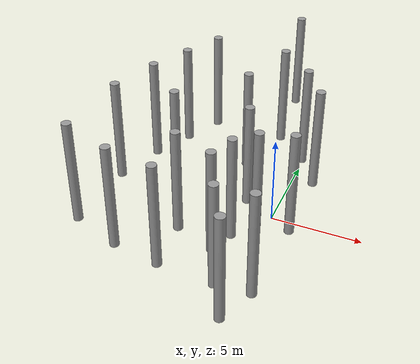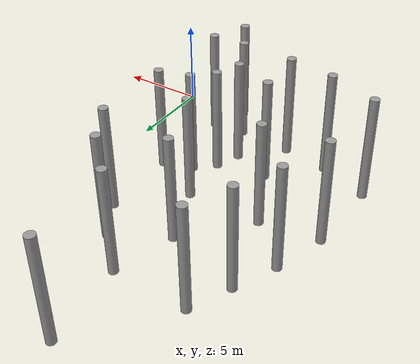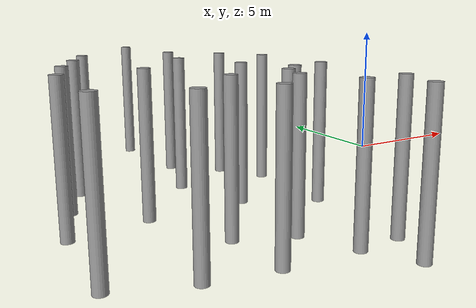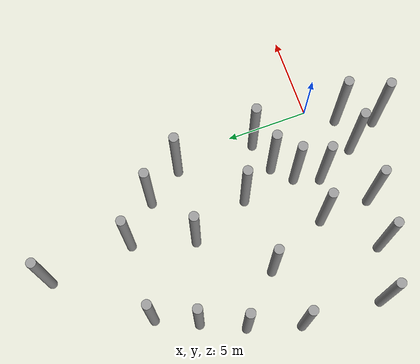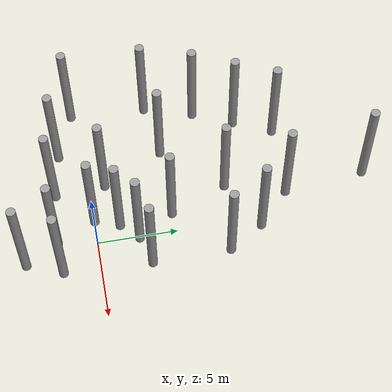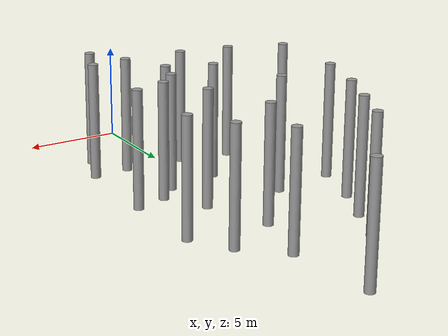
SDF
<sdf version="1.6">
 <model name="skog2">
  <link name="link_0">
   <inertial>
    <mass>1</mass>
    <inertia><ixx>0.145833</ixx><ixy>0</ixy><ixz>0</ixz><iyy>0.145833</iyy><iyz>0</iyz><izz>0.125</izz></inertia>
   </inertial>
   <pose>-3.56509 -0.045146 0 0 -0 0</pose>
   <visual name="visual">
    <geometry><cylinder><radius>0.3</radius><length>7</length></cylinder></geometry>
    <material>
     <lighting>1</lighting>
     <script><uri>file://media/materials/scripts/gazebo.material</uri><name>Gazebo/Grey</name></script>
     <shader type="vertex"><normal_map>__default__</normal_map></shader>
     <ambient>0.3 0.3 0.3 1</ambient>
     <diffuse>0.7 0.7 0.7 1</diffuse>
     <specular>0.01 0.01 0.01 1</specular>
     <emissive>0 0 0 1</emissive>
    </material>
   </visual>
   <collision name="collision">
    <geometry><cylinder><radius>0.3</radius><length>7</length></cylinder></geometry>
    <surface>
     <friction>
      <ode><mu>1</mu><mu2>1</mu2><fdir1>0 0 0</fdir1><slip1>0</slip1><slip2>0</slip2></ode>
      <torsional>
       <coefficient>1</coefficient>
       <patch_radius>0</patch_radius>
       <surface_radius>0</surface_radius>
       <use_patch_radius>1</use_patch_radius>
       <ode><slip>0</slip></ode>
      </torsional>
     </friction>
     <bounce><restitution_coefficient>0</restitution_coefficient><threshold>1e+06</threshold></bounce>
     <contact>
      <collide_without_contact>0</collide_without_contact>
      <collide_without_contact_bitmask>1</collide_without_contact_bitmask>
      <collide_bitmask>1</collide_bitmask>
      <ode>
       <soft_cfm>0</soft_cfm>
       <soft_erp>0.2</soft_erp>
       <kp>1e+13</kp>
       <kd>1</kd>
       <max_vel>0.01</max_vel>
       <min_depth>0</min_depth>
      </ode>
      <bullet>
       <split_impulse>1</split_impulse>
       <split_impulse_penetration_threshold>-0.01</split_impulse_penetration_threshold>
       <soft_cfm>0</soft_cfm>
       <soft_erp>0.2</soft_erp>
       <kp>1e+13</kp>
       <kd>1</kd>
      </bullet>
     </contact>
    </surface>
   </collision>
  </link>
  <link name="link_0_clone">
   <inertial>
    <mass>1</mass>
    <inertia><ixx>0.145833</ixx><ixy>0</ixy><ixz>0</ixz><iyy>0.145833</iyy><iyz>0</iyz><izz>0.125</izz></inertia>
   </inertial>
   <pose>-2.97752 1.58068 0 0 -0 0</pose>
   <visual name="visual">
    <geometry><cylinder><radius>0.3</radius><length>7</length></cylinder></geometry>
    <material>
     <lighting>1</lighting>
     <script><uri>file://media/materials/scripts/gazebo.material</uri><name>Gazebo/Grey</name></script>
     <shader type="vertex"><normal_map>__default__</normal_map></shader>
     <ambient>0.3 0.3 0.3 1</ambient>
     <diffuse>0.7 0.7 0.7 1</diffuse>
     <specular>0.01 0.01 0.01 1</specular>
     <emissive>0 0 0 1</emissive>
    </material>
   </visual>
   <collision name="collision">
    <geometry><cylinder><radius>0.3</radius><length>7</length></cylinder></geometry>
    <surface>
     <friction>
      <ode><mu>1</mu><mu2>1</mu2><fdir1>0 0 0</fdir1><slip1>0</slip1><slip2>0</slip2></ode>
      <torsional>
       <coefficient>1</coefficient>
       <patch_radius>0</patch_radius>
       <surface_radius>0</surface_radius>
       <use_patch_radius>1</use_patch_radius>
       <ode><slip>0</slip></ode>
      </torsional>
     </friction>
     <bounce><restitution_coefficient>0</restitution_coefficient><threshold>1e+06</threshold></bounce>
     <contact>
      <collide_without_contact>0</collide_without_contact>
      <collide_without_contact_bitmask>1</collide_without_contact_bitmask>
      <collide_bitmask>1</collide_bitmask>
      <ode>
       <soft_cfm>0</soft_cfm>
       <soft_erp>0.2</soft_erp>
       <kp>1e+13</kp>
       <kd>1</kd>
       <max_vel>0.01</max_vel>
       <min_depth>0</min_depth>
      </ode>
      <bullet>
       <split_impulse>1</split_impulse>
       <split_impulse_penetration_threshold>-0.01</split_impulse_penetration_threshold>
       <soft_cfm>0</soft_cfm>
       <soft_erp>0.2</soft_erp>
       <kp>1e+13</kp>
       <kd>1</kd>
      </bullet>
     </contact>
    </surface>
   </collision>
  </link>
  <link name="link_0_clone_0">
   <inertial>
    <mass>1</mass>
    <inertia><ixx>0.145833</ixx><ixy>0</ixy><ixz>0</ixz><iyy>0.145833</iyy><iyz>0</iyz><izz>0.125</izz></inertia>
   </inertial>
   <pose>-1.8151 2.73071 0 0 -0 0</pose>
   <visual name="visual">
    <geometry><cylinder><radius>0.3</radius><length>7</length></cylinder></geometry>
    <material>
     <lighting>1</lighting>
     <script><uri>file://media/materials/scripts/gazebo.material</uri><name>Gazebo/Grey</name></script>
     <shader type="vertex"><normal_map>__default__</normal_map></shader>
     <ambient>0.3 0.3 0.3 1</ambient>
     <diffuse>0.7 0.7 0.7 1</diffuse>
     <specular>0.01 0.01 0.01 1</specular>
     <emissive>0 0 0 1</emissive>
    </material>
   </visual>
   <collision name="collision">
    <geometry><cylinder><radius>0.3</radius><length>7</length></cylinder></geometry>
    <surface>
     <friction>
      <ode><mu>1</mu><mu2>1</mu2><fdir1>0 0 0</fdir1><slip1>0</slip1><slip2>0</slip2></ode>
      <torsional>
       <coefficient>1</coefficient>
       <patch_radius>0</patch_radius>
       <surface_radius>0</surface_radius>
       <use_patch_radius>1</use_patch_radius>
       <ode><slip>0</slip></ode>
      </torsional>
     </friction>
     <bounce><restitution_coefficient>0</restitution_coefficient><threshold>1e+06</threshold></bounce>
     <contact>
      <collide_without_contact>0</collide_without_contact>
      <collide_without_contact_bitmask>1</collide_without_contact_bitmask>
      <collide_bitmask>1</collide_bitmask>
      <ode>
       <soft_cfm>0</soft_cfm>
       <soft_erp>0.2</soft_erp>
       <kp>1e+13</kp>
       <kd>1</kd>
       <max_vel>0.01</max_vel>
       <min_depth>0</min_depth>
      </ode>
      <bullet>
       <split_impulse>1</split_impulse>
       <split_impulse_penetration_threshold>-0.01</split_impulse_penetration_threshold>
       <soft_cfm>0</soft_cfm>
       <soft_erp>0.2</soft_erp>
       <kp>1e+13</kp>
       <kd>1</kd>
      </bullet>
     </contact>
    </surface>
   </collision>
  </link>
  <link name="link_0_clone_12">
   <inertial>
    <mass>1</mass>
    <inertia><ixx>0.145833</ixx><ixy>0</ixy><ixz>0</ixz><iyy>0.145833</iyy><iyz>0</iyz><izz>0.125</izz></inertia>
   </inertial>
   <pose>-1.05106 -4.80766 0 0 -0 0</pose>
   <visual name="visual">
    <geometry><cylinder><radius>0.3</radius><length>7</length></cylinder></geometry>
    <material>
     <lighting>1</lighting>
     <script><uri>file://media/materials/scripts/gazebo.material</uri><name>Gazebo/Grey</name></script>
     <shader type="vertex"><normal_map>__default__</normal_map></shader>
     <ambient>0.3 0.3 0.3 1</ambient>
     <diffuse>0.7 0.7 0.7 1</diffuse>
     <specular>0.01 0.01 0.01 1</specular>
     <emissive>0 0 0 1</emissive>
    </material>
   </visual>
   <collision name="collision">
    <geometry><cylinder><radius>0.3</radius><length>7</length></cylinder></geometry>
    <surface>
     <friction>
      <ode><mu>1</mu><mu2>1</mu2><fdir1>0 0 0</fdir1><slip1>0</slip1><slip2>0</slip2></ode>
      <torsional>
       <coefficient>1</coefficient>
       <patch_radius>0</patch_radius>
       <surface_radius>0</surface_radius>
       <use_patch_radius>1</use_patch_radius>
       <ode><slip>0</slip></ode>
      </torsional>
     </friction>
     <bounce><restitution_coefficient>0</restitution_coefficient><threshold>1e+06</threshold></bounce>
     <contact>
      <collide_without_contact>0</collide_without_contact>
      <collide_without_contact_bitmask>1</collide_without_contact_bitmask>
      <collide_bitmask>1</collide_bitmask>
      <ode>
       <soft_cfm>0</soft_cfm>
       <soft_erp>0.2</soft_erp>
       <kp>1e+13</kp>
       <kd>1</kd>
       <max_vel>0.01</max_vel>
       <min_depth>0</min_depth>
      </ode>
      <bullet>
       <split_impulse>1</split_impulse>
       <split_impulse_penetration_threshold>-0.01</split_impulse_penetration_threshold>
       <soft_cfm>0</soft_cfm>
       <soft_erp>0.2</soft_erp>
       <kp>1e+13</kp>
       <kd>1</kd>
      </bullet>
     </contact>
    </surface>
   </collision>
  </link>
  <link name="link_0_clone_18">
   <inertial>
    <mass>1</mass>
    <inertia><ixx>0.145833</ixx><ixy>0</ixy><ixz>0</ixz><iyy>0.145833</iyy><iyz>0</iyz><izz>0.125</izz></inertia>
   </inertial>
   <pose>0.071763 8.4831 0 0 -0 0</pose>
   <visual name="visual">
    <geometry><cylinder><radius>0.3</radius><length>7</length></cylinder></geometry>
    <material>
     <lighting>1</lighting>
     <script><uri>file://media/materials/scripts/gazebo.material</uri><name>Gazebo/Grey</name></script>
     <shader type="vertex"><normal_map>__default__</normal_map></shader>
     <ambient>0.3 0.3 0.3 1</ambient>
     <diffuse>0.7 0.7 0.7 1</diffuse>
     <specular>0.01 0.01 0.01 1</specular>
     <emissive>0 0 0 1</emissive>
    </material>
   </visual>
   <collision name="collision">
    <geometry><cylinder><radius>0.3</radius><length>7</length></cylinder></geometry>
    <surface>
     <friction>
      <ode><mu>1</mu><mu2>1</mu2><fdir1>0 0 0</fdir1><slip1>0</slip1><slip2>0</slip2></ode>
      <torsional>
       <coefficient>1</coefficient>
       <patch_radius>0</patch_radius>
       <surface_radius>0</surface_radius>
       <use_patch_radius>1</use_patch_radius>
       <ode><slip>0</slip></ode>
      </torsional>
     </friction>
     <bounce><restitution_coefficient>0</restitution_coefficient><threshold>1e+06</threshold></bounce>
     <contact>
      <collide_without_contact>0</collide_without_contact>
      <collide_without_contact_bitmask>1</collide_without_contact_bitmask>
      <collide_bitmask>1</collide_bitmask>
      <ode>
       <soft_cfm>0</soft_cfm>
       <soft_erp>0.2</soft_erp>
       <kp>1e+13</kp>
       <kd>1</kd>
       <max_vel>0.01</max_vel>
       <min_depth>0</min_depth>
      </ode>
      <bullet>
       <split_impulse>1</split_impulse>
       <split_impulse_penetration_threshold>-0.01</split_impulse_penetration_threshold>
       <soft_cfm>0</soft_cfm>
       <soft_erp>0.2</soft_erp>
       <kp>1e+13</kp>
       <kd>1</kd>
      </bullet>
     </contact>
    </surface>
   </collision>
  </link>
  <link name="link_0_clone_19">
   <inertial>
    <mass>1</mass>
    <inertia><ixx>0.145833</ixx><ixy>0</ixy><ixz>0</ixz><iyy>0.145833</iyy><iyz>0</iyz><izz>0.125</izz></inertia>
   </inertial>
   <pose>-4.78843 8.93534 0 0 -0 0</pose>
   <visual name="visual">
    <geometry><cylinder><radius>0.3</radius><length>7</length></cylinder></geometry>
    <material>
     <lighting>1</lighting>
     <script><uri>file://media/materials/scripts/gazebo.material</uri><name>Gazebo/Grey</name></script>
     <shader type="vertex"><normal_map>__default__</normal_map></shader>
     <ambient>0.3 0.3 0.3 1</ambient>
     <diffuse>0.7 0.7 0.7 1</diffuse>
     <specular>0.01 0.01 0.01 1</specular>
     <emissive>0 0 0 1</emissive>
    </material>
   </visual>
   <collision name="collision">
    <geometry><cylinder><radius>0.3</radius><length>7</length></cylinder></geometry>
    <surface>
     <friction>
      <ode><mu>1</mu><mu2>1</mu2><fdir1>0 0 0</fdir1><slip1>0</slip1><slip2>0</slip2></ode>
      <torsional>
       <coefficient>1</coefficient>
       <patch_radius>0</patch_radius>
       <surface_radius>0</surface_radius>
       <use_patch_radius>1</use_patch_radius>
       <ode><slip>0</slip></ode>
      </torsional>
     </friction>
     <bounce><restitution_coefficient>0</restitution_coefficient><threshold>1e+06</threshold></bounce>
     <contact>
      <collide_without_contact>0</collide_without_contact>
      <collide_without_contact_bitmask>1</collide_without_contact_bitmask>
      <collide_bitmask>1</collide_bitmask>
      <ode>
       <soft_cfm>0</soft_cfm>
       <soft_erp>0.2</soft_erp>
       <kp>1e+13</kp>
       <kd>1</kd>
       <max_vel>0.01</max_vel>
       <min_depth>0</min_depth>
      </ode>
      <bullet>
       <split_impulse>1</split_impulse>
       <split_impulse_penetration_threshold>-0.01</split_impulse_penetration_threshold>
       <soft_cfm>0</soft_cfm>
       <soft_erp>0.2</soft_erp>
       <kp>1e+13</kp>
       <kd>1</kd>
      </bullet>
     </contact>
    </surface>
   </collision>
  </link>
  <link name="link_0_clone_20">
   <inertial>
    <mass>1</mass>
    <inertia><ixx>0.145833</ixx><ixy>0</ixy><ixz>0</ixz><iyy>0.145833</iyy><iyz>0</iyz><izz>0.125</izz></inertia>
   </inertial>
   <pose>-8.199 5.0595 0 0 -0 0</pose>
   <visual name="visual">
    <geometry><cylinder><radius>0.3</radius><length>7</length></cylinder></geometry>
    <material>
     <lighting>1</lighting>
     <script><uri>file://media/materials/scripts/gazebo.material</uri><name>Gazebo/Grey</name></script>
     <shader type="vertex"><normal_map>__default__</normal_map></shader>
     <ambient>0.3 0.3 0.3 1</ambient>
     <diffuse>0.7 0.7 0.7 1</diffuse>
     <specular>0.01 0.01 0.01 1</specular>
     <emissive>0 0 0 1</emissive>
    </material>
   </visual>
   <collision name="collision">
    <geometry><cylinder><radius>0.3</radius><length>7</length></cylinder></geometry>
    <surface>
     <friction>
      <ode><mu>1</mu><mu2>1</mu2><fdir1>0 0 0</fdir1><slip1>0</slip1><slip2>0</slip2></ode>
      <torsional>
       <coefficient>1</coefficient>
       <patch_radius>0</patch_radius>
       <surface_radius>0</surface_radius>
       <use_patch_radius>1</use_patch_radius>
       <ode><slip>0</slip></ode>
      </torsional>
     </friction>
     <bounce><restitution_coefficient>0</restitution_coefficient><threshold>1e+06</threshold></bounce>
     <contact>
      <collide_without_contact>0</collide_without_contact>
      <collide_without_contact_bitmask>1</collide_without_contact_bitmask>
      <collide_bitmask>1</collide_bitmask>
      <ode>
       <soft_cfm>0</soft_cfm>
       <soft_erp>0.2</soft_erp>
       <kp>1e+13</kp>
       <kd>1</kd>
       <max_vel>0.01</max_vel>
       <min_depth>0</min_depth>
      </ode>
      <bullet>
       <split_impulse>1</split_impulse>
       <split_impulse_penetration_threshold>-0.01</split_impulse_penetration_threshold>
       <soft_cfm>0</soft_cfm>
       <soft_erp>0.2</soft_erp>
       <kp>1e+13</kp>
       <kd>1</kd>
      </bullet>
     </contact>
    </surface>
   </collision>
  </link>
  <link name="link_0_clone_21">
   <inertial>
    <mass>1</mass>
    <inertia><ixx>0.145833</ixx><ixy>0</ixy><ixz>0</ixz><iyy>0.145833</iyy><iyz>0</iyz><izz>0.125</izz></inertia>
   </inertial>
   <pose>-9.02508 -1.87411 0 0 -0 0</pose>
   <visual name="visual">
    <geometry><cylinder><radius>0.3</radius><length>7</length></cylinder></geometry>
    <material>
     <lighting>1</lighting>
     <script><uri>file://media/materials/scripts/gazebo.material</uri><name>Gazebo/Grey</name></script>
     <shader type="vertex"><normal_map>__default__</normal_map></shader>
     <ambient>0.3 0.3 0.3 1</ambient>
     <diffuse>0.7 0.7 0.7 1</diffuse>
     <specular>0.01 0.01 0.01 1</specular>
     <emissive>0 0 0 1</emissive>
    </material>
   </visual>
   <collision name="collision">
    <geometry><cylinder><radius>0.3</radius><length>7</length></cylinder></geometry>
    <surface>
     <friction>
      <ode><mu>1</mu><mu2>1</mu2><fdir1>0 0 0</fdir1><slip1>0</slip1><slip2>0</slip2></ode>
      <torsional>
       <coefficient>1</coefficient>
       <patch_radius>0</patch_radius>
       <surface_radius>0</surface_radius>
       <use_patch_radius>1</use_patch_radius>
       <ode><slip>0</slip></ode>
      </torsional>
     </friction>
     <bounce><restitution_coefficient>0</restitution_coefficient><threshold>1e+06</threshold></bounce>
     <contact>
      <collide_without_contact>0</collide_without_contact>
      <collide_without_contact_bitmask>1</collide_without_contact_bitmask>
      <collide_bitmask>1</collide_bitmask>
      <ode>
       <soft_cfm>0</soft_cfm>
       <soft_erp>0.2</soft_erp>
       <kp>1e+13</kp>
       <kd>1</kd>
       <max_vel>0.01</max_vel>
       <min_depth>0</min_depth>
      </ode>
      <bullet>
       <split_impulse>1</split_impulse>
       <split_impulse_penetration_threshold>-0.01</split_impulse_penetration_threshold>
       <soft_cfm>0</soft_cfm>
       <soft_erp>0.2</soft_erp>
       <kp>1e+13</kp>
       <kd>1</kd>
      </bullet>
     </contact>
    </surface>
   </collision>
  </link>
  <link name="link_0_clone_3">
   <inertial>
    <mass>1</mass>
    <inertia><ixx>0.145833</ixx><ixy>0</ixy><ixz>0</ixz><iyy>0.145833</iyy><iyz>0</iyz><izz>0.125</izz></inertia>
   </inertial>
   <pose>0.132438 3.29787 0 0 -0 0</pose>
   <visual name="visual">
    <geometry><cylinder><radius>0.3</radius><length>7</length></cylinder></geometry>
    <material>
     <lighting>1</lighting>
     <script><uri>file://media/materials/scripts/gazebo.material</uri><name>Gazebo/Grey</name></script>
     <shader type="vertex"><normal_map>__default__</normal_map></shader>
     <ambient>0.3 0.3 0.3 1</ambient>
     <diffuse>0.7 0.7 0.7 1</diffuse>
     <specular>0.01 0.01 0.01 1</specular>
     <emissive>0 0 0 1</emissive>
    </material>
   </visual>
   <collision name="collision">
    <geometry><cylinder><radius>0.3</radius><length>7</length></cylinder></geometry>
    <surface>
     <friction>
      <ode><mu>1</mu><mu2>1</mu2><fdir1>0 0 0</fdir1><slip1>0</slip1><slip2>0</slip2></ode>
      <torsional>
       <coefficient>1</coefficient>
       <patch_radius>0</patch_radius>
       <surface_radius>0</surface_radius>
       <use_patch_radius>1</use_patch_radius>
       <ode><slip>0</slip></ode>
      </torsional>
     </friction>
     <bounce><restitution_coefficient>0</restitution_coefficient><threshold>1e+06</threshold></bounce>
     <contact>
      <collide_without_contact>0</collide_without_contact>
      <collide_without_contact_bitmask>1</collide_without_contact_bitmask>
      <collide_bitmask>1</collide_bitmask>
      <ode>
       <soft_cfm>0</soft_cfm>
       <soft_erp>0.2</soft_erp>
       <kp>1e+13</kp>
       <kd>1</kd>
       <max_vel>0.01</max_vel>
       <min_depth>0</min_depth>
      </ode>
      <bullet>
       <split_impulse>1</split_impulse>
       <split_impulse_penetration_threshold>-0.01</split_impulse_penetration_threshold>
       <soft_cfm>0</soft_cfm>
       <soft_erp>0.2</soft_erp>
       <kp>1e+13</kp>
       <kd>1</kd>
      </bullet>
     </contact>
    </surface>
   </collision>
  </link>
  <link name="link_0_clone_38">
   <inertial>
    <mass>1</mass>
    <inertia><ixx>0.145833</ixx><ixy>0</ixy><ixz>0</ixz><iyy>0.145833</iyy><iyz>0</iyz><izz>0.125</izz></inertia>
   </inertial>
   <pose>-3.63595 12.9178 0 0 -0 0</pose>
   <visual name="visual">
    <geometry><cylinder><radius>0.3</radius><length>7</length></cylinder></geometry>
    <material>
     <lighting>1</lighting>
     <script><uri>file://media/materials/scripts/gazebo.material</uri><name>Gazebo/Grey</name></script>
     <shader type="vertex"><normal_map>__default__</normal_map></shader>
     <ambient>0.3 0.3 0.3 1</ambient>
     <diffuse>0.7 0.7 0.7 1</diffuse>
     <specular>0.01 0.01 0.01 1</specular>
     <emissive>0 0 0 1</emissive>
    </material>
   </visual>
   <collision name="collision">
    <geometry><cylinder><radius>0.3</radius><length>7</length></cylinder></geometry>
    <surface>
     <friction>
      <ode><mu>1</mu><mu2>1</mu2><fdir1>0 0 0</fdir1><slip1>0</slip1><slip2>0</slip2></ode>
      <torsional>
       <coefficient>1</coefficient>
       <patch_radius>0</patch_radius>
       <surface_radius>0</surface_radius>
       <use_patch_radius>1</use_patch_radius>
       <ode><slip>0</slip></ode>
      </torsional>
     </friction>
     <bounce><restitution_coefficient>0</restitution_coefficient><threshold>1e+06</threshold></bounce>
     <contact>
      <collide_without_contact>0</collide_without_contact>
      <collide_without_contact_bitmask>1</collide_without_contact_bitmask>
      <collide_bitmask>1</collide_bitmask>
      <ode>
       <soft_cfm>0</soft_cfm>
       <soft_erp>0.2</soft_erp>
       <kp>1e+13</kp>
       <kd>1</kd>
       <max_vel>0.01</max_vel>
       <min_depth>0</min_depth>
      </ode>
      <bullet>
       <split_impulse>1</split_impulse>
       <split_impulse_penetration_threshold>-0.01</split_impulse_penetration_threshold>
       <soft_cfm>0</soft_cfm>
       <soft_erp>0.2</soft_erp>
       <kp>1e+13</kp>
       <kd>1</kd>
      </bullet>
     </contact>
    </surface>
   </collision>
  </link>
  <link name="link_0_clone_39">
   <inertial>
    <mass>1</mass>
    <inertia><ixx>0.145833</ixx><ixy>0</ixy><ixz>0</ixz><iyy>0.145833</iyy><iyz>0</iyz><izz>0.125</izz></inertia>
   </inertial>
   <pose>-8.62884 13.0511 0 0 -0 0</pose>
   <visual name="visual">
    <geometry><cylinder><radius>0.3</radius><length>7</length></cylinder></geometry>
    <material>
     <lighting>1</lighting>
     <script><uri>file://media/materials/scripts/gazebo.material</uri><name>Gazebo/Grey</name></script>
     <shader type="vertex"><normal_map>__default__</normal_map></shader>
     <ambient>0.3 0.3 0.3 1</ambient>
     <diffuse>0.7 0.7 0.7 1</diffuse>
     <specular>0.01 0.01 0.01 1</specular>
     <emissive>0 0 0 1</emissive>
    </material>
   </visual>
   <collision name="collision">
    <geometry><cylinder><radius>0.3</radius><length>7</length></cylinder></geometry>
    <surface>
     <friction>
      <ode><mu>1</mu><mu2>1</mu2><fdir1>0 0 0</fdir1><slip1>0</slip1><slip2>0</slip2></ode>
      <torsional>
       <coefficient>1</coefficient>
       <patch_radius>0</patch_radius>
       <surface_radius>0</surface_radius>
       <use_patch_radius>1</use_patch_radius>
       <ode><slip>0</slip></ode>
      </torsional>
     </friction>
     <bounce><restitution_coefficient>0</restitution_coefficient><threshold>1e+06</threshold></bounce>
     <contact>
      <collide_without_contact>0</collide_without_contact>
      <collide_without_contact_bitmask>1</collide_without_contact_bitmask>
      <collide_bitmask>1</collide_bitmask>
      <ode>
       <soft_cfm>0</soft_cfm>
       <soft_erp>0.2</soft_erp>
       <kp>1e+13</kp>
       <kd>1</kd>
       <max_vel>0.01</max_vel>
       <min_depth>0</min_depth>
      </ode>
      <bullet>
       <split_impulse>1</split_impulse>
       <split_impulse_penetration_threshold>-0.01</split_impulse_penetration_threshold>
       <soft_cfm>0</soft_cfm>
       <soft_erp>0.2</soft_erp>
       <kp>1e+13</kp>
       <kd>1</kd>
      </bullet>
     </contact>
    </surface>
   </collision>
  </link>
  <link name="link_0_clone_4">
   <inertial>
    <mass>1</mass>
    <inertia><ixx>0.145833</ixx><ixy>0</ixy><ixz>0</ixz><iyy>0.145833</iyy><iyz>0</iyz><izz>0.125</izz></inertia>
   </inertial>
   <pose>-2.31778 -2.62714 0 0 -0 0</pose>
   <visual name="visual">
    <geometry><cylinder><radius>0.3</radius><length>7</length></cylinder></geometry>
    <material>
     <lighting>1</lighting>
     <script><uri>file://media/materials/scripts/gazebo.material</uri><name>Gazebo/Grey</name></script>
     <shader type="vertex"><normal_map>__default__</normal_map></shader>
     <ambient>0.3 0.3 0.3 1</ambient>
     <diffuse>0.7 0.7 0.7 1</diffuse>
     <specular>0.01 0.01 0.01 1</specular>
     <emissive>0 0 0 1</emissive>
    </material>
   </visual>
   <collision name="collision">
    <geometry><cylinder><radius>0.3</radius><length>7</length></cylinder></geometry>
    <surface>
     <friction>
      <ode><mu>1</mu><mu2>1</mu2><fdir1>0 0 0</fdir1><slip1>0</slip1><slip2>0</slip2></ode>
      <torsional>
       <coefficient>1</coefficient>
       <patch_radius>0</patch_radius>
       <surface_radius>0</surface_radius>
       <use_patch_radius>1</use_patch_radius>
       <ode><slip>0</slip></ode>
      </torsional>
     </friction>
     <bounce><restitution_coefficient>0</restitution_coefficient><threshold>1e+06</threshold></bounce>
     <contact>
      <collide_without_contact>0</collide_without_contact>
      <collide_without_contact_bitmask>1</collide_without_contact_bitmask>
      <collide_bitmask>1</collide_bitmask>
      <ode>
       <soft_cfm>0</soft_cfm>
       <soft_erp>0.2</soft_erp>
       <kp>1e+13</kp>
       <kd>1</kd>
       <max_vel>0.01</max_vel>
       <min_depth>0</min_depth>
      </ode>
      <bullet>
       <split_impulse>1</split_impulse>
       <split_impulse_penetration_threshold>-0.01</split_impulse_penetration_threshold>
       <soft_cfm>0</soft_cfm>
       <soft_erp>0.2</soft_erp>
       <kp>1e+13</kp>
       <kd>1</kd>
      </bullet>
     </contact>
    </surface>
   </collision>
  </link>
  <link name="link_0_clone_40">
   <inertial>
    <mass>1</mass>
    <inertia><ixx>0.145833</ixx><ixy>0</ixy><ixz>0</ixz><iyy>0.145833</iyy><iyz>0</iyz><izz>0.125</izz></inertia>
   </inertial>
   <pose>-9.79916 10.4817 0 0 -0 0</pose>
   <visual name="visual">
    <geometry><cylinder><radius>0.3</radius><length>7</length></cylinder></geometry>
    <material>
     <lighting>1</lighting>
     <script><uri>file://media/materials/scripts/gazebo.material</uri><name>Gazebo/Grey</name></script>
     <shader type="vertex"><normal_map>__default__</normal_map></shader>
     <ambient>0.3 0.3 0.3 1</ambient>
     <diffuse>0.7 0.7 0.7 1</diffuse>
     <specular>0.01 0.01 0.01 1</specular>
     <emissive>0 0 0 1</emissive>
    </material>
   </visual>
   <collision name="collision">
    <geometry><cylinder><radius>0.3</radius><length>7</length></cylinder></geometry>
    <surface>
     <friction>
      <ode><mu>1</mu><mu2>1</mu2><fdir1>0 0 0</fdir1><slip1>0</slip1><slip2>0</slip2></ode>
      <torsional>
       <coefficient>1</coefficient>
       <patch_radius>0</patch_radius>
       <surface_radius>0</surface_radius>
       <use_patch_radius>1</use_patch_radius>
       <ode><slip>0</slip></ode>
      </torsional>
     </friction>
     <bounce><restitution_coefficient>0</restitution_coefficient><threshold>1e+06</threshold></bounce>
     <contact>
      <collide_without_contact>0</collide_without_contact>
      <collide_without_contact_bitmask>1</collide_without_contact_bitmask>
      <collide_bitmask>1</collide_bitmask>
      <ode>
       <soft_cfm>0</soft_cfm>
       <soft_erp>0.2</soft_erp>
       <kp>1e+13</kp>
       <kd>1</kd>
       <max_vel>0.01</max_vel>
       <min_depth>0</min_depth>
      </ode>
      <bullet>
       <split_impulse>1</split_impulse>
       <split_impulse_penetration_threshold>-0.01</split_impulse_penetration_threshold>
       <soft_cfm>0</soft_cfm>
       <soft_erp>0.2</soft_erp>
       <kp>1e+13</kp>
       <kd>1</kd>
      </bullet>
     </contact>
    </surface>
   </collision>
  </link>
  <link name="link_0_clone_41">
   <inertial>
    <mass>1</mass>
    <inertia><ixx>0.145833</ixx><ixy>0</ixy><ixz>0</ixz><iyy>0.145833</iyy><iyz>0</iyz><izz>0.125</izz></inertia>
   </inertial>
   <pose>-11.0225 7.80768 0 0 -0 0</pose>
   <visual name="visual">
    <geometry><cylinder><radius>0.3</radius><length>7</length></cylinder></geometry>
    <material>
     <lighting>1</lighting>
     <script><uri>file://media/materials/scripts/gazebo.material</uri><name>Gazebo/Grey</name></script>
     <shader type="vertex"><normal_map>__default__</normal_map></shader>
     <ambient>0.3 0.3 0.3 1</ambient>
     <diffuse>0.7 0.7 0.7 1</diffuse>
     <specular>0.01 0.01 0.01 1</specular>
     <emissive>0 0 0 1</emissive>
    </material>
   </visual>
   <collision name="collision">
    <geometry><cylinder><radius>0.3</radius><length>7</length></cylinder></geometry>
    <surface>
     <friction>
      <ode><mu>1</mu><mu2>1</mu2><fdir1>0 0 0</fdir1><slip1>0</slip1><slip2>0</slip2></ode>
      <torsional>
       <coefficient>1</coefficient>
       <patch_radius>0</patch_radius>
       <surface_radius>0</surface_radius>
       <use_patch_radius>1</use_patch_radius>
       <ode><slip>0</slip></ode>
      </torsional>
     </friction>
     <bounce><restitution_coefficient>0</restitution_coefficient><threshold>1e+06</threshold></bounce>
     <contact>
      <collide_without_contact>0</collide_without_contact>
      <collide_without_contact_bitmask>1</collide_without_contact_bitmask>
      <collide_bitmask>1</collide_bitmask>
      <ode>
       <soft_cfm>0</soft_cfm>
       <soft_erp>0.2</soft_erp>
       <kp>1e+13</kp>
       <kd>1</kd>
       <max_vel>0.01</max_vel>
       <min_depth>0</min_depth>
      </ode>
      <bullet>
       <split_impulse>1</split_impulse>
       <split_impulse_penetration_threshold>-0.01</split_impulse_penetration_threshold>
       <soft_cfm>0</soft_cfm>
       <soft_erp>0.2</soft_erp>
       <kp>1e+13</kp>
       <kd>1</kd>
      </bullet>
     </contact>
    </surface>
   </collision>
  </link>
  <link name="link_0_clone_42">
   <inertial>
    <mass>1</mass>
    <inertia><ixx>0.145833</ixx><ixy>0</ixy><ixz>0</ixz><iyy>0.145833</iyy><iyz>0</iyz><izz>0.125</izz></inertia>
   </inertial>
   <pose>-12.0403 4.50246 0 0 -0 0</pose>
   <visual name="visual">
    <geometry><cylinder><radius>0.3</radius><length>7</length></cylinder></geometry>
    <material>
     <lighting>1</lighting>
     <script><uri>file://media/materials/scripts/gazebo.material</uri><name>Gazebo/Grey</name></script>
     <shader type="vertex"><normal_map>__default__</normal_map></shader>
     <ambient>0.3 0.3 0.3 1</ambient>
     <diffuse>0.7 0.7 0.7 1</diffuse>
     <specular>0.01 0.01 0.01 1</specular>
     <emissive>0 0 0 1</emissive>
    </material>
   </visual>
   <collision name="collision">
    <geometry><cylinder><radius>0.3</radius><length>7</length></cylinder></geometry>
    <surface>
     <friction>
      <ode><mu>1</mu><mu2>1</mu2><fdir1>0 0 0</fdir1><slip1>0</slip1><slip2>0</slip2></ode>
      <torsional>
       <coefficient>1</coefficient>
       <patch_radius>0</patch_radius>
       <surface_radius>0</surface_radius>
       <use_patch_radius>1</use_patch_radius>
       <ode><slip>0</slip></ode>
      </torsional>
     </friction>
     <bounce><restitution_coefficient>0</restitution_coefficient><threshold>1e+06</threshold></bounce>
     <contact>
      <collide_without_contact>0</collide_without_contact>
      <collide_without_contact_bitmask>1</collide_without_contact_bitmask>
      <collide_bitmask>1</collide_bitmask>
      <ode>
       <soft_cfm>0</soft_cfm>
       <soft_erp>0.2</soft_erp>
       <kp>1e+13</kp>
       <kd>1</kd>
       <max_vel>0.01</max_vel>
       <min_depth>0</min_depth>
      </ode>
      <bullet>
       <split_impulse>1</split_impulse>
       <split_impulse_penetration_threshold>-0.01</split_impulse_penetration_threshold>
       <soft_cfm>0</soft_cfm>
       <soft_erp>0.2</soft_erp>
       <kp>1e+13</kp>
       <kd>1</kd>
      </bullet>
     </contact>
    </surface>
   </collision>
  </link>
  <link name="link_0_clone_43">
   <inertial>
    <mass>1</mass>
    <inertia><ixx>0.145833</ixx><ixy>0</ixy><ixz>0</ixz><iyy>0.145833</iyy><iyz>0</iyz><izz>0.125</izz></inertia>
   </inertial>
   <pose>-12.2787 -0.647414 0 0 -0 0</pose>
   <visual name="visual">
    <geometry><cylinder><radius>0.3</radius><length>7</length></cylinder></geometry>
    <material>
     <lighting>1</lighting>
     <script><uri>file://media/materials/scripts/gazebo.material</uri><name>Gazebo/Grey</name></script>
     <shader type="vertex"><normal_map>__default__</normal_map></shader>
     <ambient>0.3 0.3 0.3 1</ambient>
     <diffuse>0.7 0.7 0.7 1</diffuse>
     <specular>0.01 0.01 0.01 1</specular>
     <emissive>0 0 0 1</emissive>
    </material>
   </visual>
   <collision name="collision">
    <geometry><cylinder><radius>0.3</radius><length>7</length></cylinder></geometry>
    <surface>
     <friction>
      <ode><mu>1</mu><mu2>1</mu2><fdir1>0 0 0</fdir1><slip1>0</slip1><slip2>0</slip2></ode>
      <torsional>
       <coefficient>1</coefficient>
       <patch_radius>0</patch_radius>
       <surface_radius>0</surface_radius>
       <use_patch_radius>1</use_patch_radius>
       <ode><slip>0</slip></ode>
      </torsional>
     </friction>
     <bounce><restitution_coefficient>0</restitution_coefficient><threshold>1e+06</threshold></bounce>
     <contact>
      <collide_without_contact>0</collide_without_contact>
      <collide_without_contact_bitmask>1</collide_without_contact_bitmask>
      <collide_bitmask>1</collide_bitmask>
      <ode>
       <soft_cfm>0</soft_cfm>
       <soft_erp>0.2</soft_erp>
       <kp>1e+13</kp>
       <kd>1</kd>
       <max_vel>0.01</max_vel>
       <min_depth>0</min_depth>
      </ode>
      <bullet>
       <split_impulse>1</split_impulse>
       <split_impulse_penetration_threshold>-0.01</split_impulse_penetration_threshold>
       <soft_cfm>0</soft_cfm>
       <soft_erp>0.2</soft_erp>
       <kp>1e+13</kp>
       <kd>1</kd>
      </bullet>
     </contact>
    </surface>
   </collision>
  </link>
  <link name="link_0_clone_5">
   <inertial>
    <mass>1</mass>
    <inertia><ixx>0.145833</ixx><ixy>0</ixy><ixz>0</ixz><iyy>0.145833</iyy><iyz>0</iyz><izz>0.125</izz></inertia>
   </inertial>
   <pose>-5.9429 -2.3974 0 0 -0 0</pose>
   <visual name="visual">
    <geometry><cylinder><radius>0.3</radius><length>7</length></cylinder></geometry>
    <material>
     <lighting>1</lighting>
     <script><uri>file://media/materials/scripts/gazebo.material</uri><name>Gazebo/Grey</name></script>
     <shader type="vertex"><normal_map>__default__</normal_map></shader>
     <ambient>0.3 0.3 0.3 1</ambient>
     <diffuse>0.7 0.7 0.7 1</diffuse>
     <specular>0.01 0.01 0.01 1</specular>
     <emissive>0 0 0 1</emissive>
    </material>
   </visual>
   <collision name="collision">
    <geometry><cylinder><radius>0.3</radius><length>7</length></cylinder></geometry>
    <surface>
     <friction>
      <ode><mu>1</mu><mu2>1</mu2><fdir1>0 0 0</fdir1><slip1>0</slip1><slip2>0</slip2></ode>
      <torsional>
       <coefficient>1</coefficient>
       <patch_radius>0</patch_radius>
       <surface_radius>0</surface_radius>
       <use_patch_radius>1</use_patch_radius>
       <ode><slip>0</slip></ode>
      </torsional>
     </friction>
     <bounce><restitution_coefficient>0</restitution_coefficient><threshold>1e+06</threshold></bounce>
     <contact>
      <collide_without_contact>0</collide_without_contact>
      <collide_without_contact_bitmask>1</collide_without_contact_bitmask>
      <collide_bitmask>1</collide_bitmask>
      <ode>
       <soft_cfm>0</soft_cfm>
       <soft_erp>0.2</soft_erp>
       <kp>1e+13</kp>
       <kd>1</kd>
       <max_vel>0.01</max_vel>
       <min_depth>0</min_depth>
      </ode>
      <bullet>
       <split_impulse>1</split_impulse>
       <split_impulse_penetration_threshold>-0.01</split_impulse_penetration_threshold>
       <soft_cfm>0</soft_cfm>
       <soft_erp>0.2</soft_erp>
       <kp>1e+13</kp>
       <kd>1</kd>
      </bullet>
     </contact>
    </surface>
   </collision>
  </link>
  <link name="link_0_clone_58">
   <inertial>
    <mass>1</mass>
    <inertia><ixx>0.145833</ixx><ixy>0</ixy><ixz>0</ixz><iyy>0.145833</iyy><iyz>0</iyz><izz>0.125</izz></inertia>
   </inertial>
   <pose>-4.23698 18.3867 0 0 -0 0</pose>
   <visual name="visual">
    <geometry><cylinder><radius>0.3</radius><length>7</length></cylinder></geometry>
    <material>
     <lighting>1</lighting>
     <script><uri>file://media/materials/scripts/gazebo.material</uri><name>Gazebo/Grey</name></script>
     <shader type="vertex"><normal_map>__default__</normal_map></shader>
     <ambient>0.3 0.3 0.3 1</ambient>
     <diffuse>0.7 0.7 0.7 1</diffuse>
     <specular>0.01 0.01 0.01 1</specular>
     <emissive>0 0 0 1</emissive>
    </material>
   </visual>
   <collision name="collision">
    <geometry><cylinder><radius>0.3</radius><length>7</length></cylinder></geometry>
    <surface>
     <friction>
      <ode><mu>1</mu><mu2>1</mu2><fdir1>0 0 0</fdir1><slip1>0</slip1><slip2>0</slip2></ode>
      <torsional>
       <coefficient>1</coefficient>
       <patch_radius>0</patch_radius>
       <surface_radius>0</surface_radius>
       <use_patch_radius>1</use_patch_radius>
       <ode><slip>0</slip></ode>
      </torsional>
     </friction>
     <bounce><restitution_coefficient>0</restitution_coefficient><threshold>1e+06</threshold></bounce>
     <contact>
      <collide_without_contact>0</collide_without_contact>
      <collide_without_contact_bitmask>1</collide_without_contact_bitmask>
      <collide_bitmask>1</collide_bitmask>
      <ode>
       <soft_cfm>0</soft_cfm>
       <soft_erp>0.2</soft_erp>
       <kp>1e+13</kp>
       <kd>1</kd>
       <max_vel>0.01</max_vel>
       <min_depth>0</min_depth>
      </ode>
      <bullet>
       <split_impulse>1</split_impulse>
       <split_impulse_penetration_threshold>-0.01</split_impulse_penetration_threshold>
       <soft_cfm>0</soft_cfm>
       <soft_erp>0.2</soft_erp>
       <kp>1e+13</kp>
       <kd>1</kd>
      </bullet>
     </contact>
    </surface>
   </collision>
  </link>
  <link name="link_0_clone_59">
   <inertial>
    <mass>1</mass>
    <inertia><ixx>0.145833</ixx><ixy>0</ixy><ixz>0</ixz><iyy>0.145833</iyy><iyz>0</iyz><izz>0.125</izz></inertia>
   </inertial>
   <pose>-1.38748 10.8034 0 0 -0 0</pose>
   <visual name="visual">
    <geometry><cylinder><radius>0.3</radius><length>7</length></cylinder></geometry>
    <material>
     <lighting>1</lighting>
     <script><uri>file://media/materials/scripts/gazebo.material</uri><name>Gazebo/Grey</name></script>
     <shader type="vertex"><normal_map>__default__</normal_map></shader>
     <ambient>0.3 0.3 0.3 1</ambient>
     <diffuse>0.7 0.7 0.7 1</diffuse>
     <specular>0.01 0.01 0.01 1</specular>
     <emissive>0 0 0 1</emissive>
    </material>
   </visual>
   <collision name="collision">
    <geometry><cylinder><radius>0.3</radius><length>7</length></cylinder></geometry>
    <surface>
     <friction>
      <ode><mu>1</mu><mu2>1</mu2><fdir1>0 0 0</fdir1><slip1>0</slip1><slip2>0</slip2></ode>
      <torsional>
       <coefficient>1</coefficient>
       <patch_radius>0</patch_radius>
       <surface_radius>0</surface_radius>
       <use_patch_radius>1</use_patch_radius>
       <ode><slip>0</slip></ode>
      </torsional>
     </friction>
     <bounce><restitution_coefficient>0</restitution_coefficient><threshold>1e+06</threshold></bounce>
     <contact>
      <collide_without_contact>0</collide_without_contact>
      <collide_without_contact_bitmask>1</collide_without_contact_bitmask>
      <collide_bitmask>1</collide_bitmask>
      <ode>
       <soft_cfm>0</soft_cfm>
       <soft_erp>0.2</soft_erp>
       <kp>1e+13</kp>
       <kd>1</kd>
       <max_vel>0.01</max_vel>
       <min_depth>0</min_depth>
      </ode>
      <bullet>
       <split_impulse>1</split_impulse>
       <split_impulse_penetration_threshold>-0.01</split_impulse_penetration_threshold>
       <soft_cfm>0</soft_cfm>
       <soft_erp>0.2</soft_erp>
       <kp>1e+13</kp>
       <kd>1</kd>
      </bullet>
     </contact>
    </surface>
   </collision>
  </link>
  <link name="link_0_clone_6">
   <inertial>
    <mass>1</mass>
    <inertia><ixx>0.145833</ixx><ixy>0</ixy><ixz>0</ixz><iyy>0.145833</iyy><iyz>0</iyz><izz>0.125</izz></inertia>
   </inertial>
   <pose>-0.108448 -2.48138 0 0 -0 0</pose>
   <visual name="visual">
    <geometry><cylinder><radius>0.3</radius><length>7</length></cylinder></geometry>
    <material>
     <lighting>1</lighting>
     <script><uri>file://media/materials/scripts/gazebo.material</uri><name>Gazebo/Grey</name></script>
     <shader type="vertex"><normal_map>__default__</normal_map></shader>
     <ambient>0.3 0.3 0.3 1</ambient>
     <diffuse>0.7 0.7 0.7 1</diffuse>
     <specular>0.01 0.01 0.01 1</specular>
     <emissive>0 0 0 1</emissive>
    </material>
   </visual>
   <collision name="collision">
    <geometry><cylinder><radius>0.3</radius><length>7</length></cylinder></geometry>
    <surface>
     <friction>
      <ode><mu>1</mu><mu2>1</mu2><fdir1>0 0 0</fdir1><slip1>0</slip1><slip2>0</slip2></ode>
      <torsional>
       <coefficient>1</coefficient>
       <patch_radius>0</patch_radius>
       <surface_radius>0</surface_radius>
       <use_patch_radius>1</use_patch_radius>
       <ode><slip>0</slip></ode>
      </torsional>
     </friction>
     <bounce><restitution_coefficient>0</restitution_coefficient><threshold>1e+06</threshold></bounce>
     <contact>
      <collide_without_contact>0</collide_without_contact>
      <collide_without_contact_bitmask>1</collide_without_contact_bitmask>
      <collide_bitmask>1</collide_bitmask>
      <ode>
       <soft_cfm>0</soft_cfm>
       <soft_erp>0.2</soft_erp>
       <kp>1e+13</kp>
       <kd>1</kd>
       <max_vel>0.01</max_vel>
       <min_depth>0</min_depth>
      </ode>
      <bullet>
       <split_impulse>1</split_impulse>
       <split_impulse_penetration_threshold>-0.01</split_impulse_penetration_threshold>
       <soft_cfm>0</soft_cfm>
       <soft_erp>0.2</soft_erp>
       <kp>1e+13</kp>
       <kd>1</kd>
      </bullet>
     </contact>
    </surface>
   </collision>
  </link>
  <link name="link_0_clone_8">
   <inertial>
    <mass>1</mass>
    <inertia><ixx>0.145833</ixx><ixy>0</ixy><ixz>0</ixz><iyy>0.145833</iyy><iyz>0</iyz><izz>0.125</izz></inertia>
   </inertial>
   <pose>-6.18806 0.967701 0 0 -0 0</pose>
   <visual name="visual">
    <geometry><cylinder><radius>0.3</radius><length>7</length></cylinder></geometry>
    <material>
     <lighting>1</lighting>
     <script><uri>file://media/materials/scripts/gazebo.material</uri><name>Gazebo/Grey</name></script>
     <shader type="vertex"><normal_map>__default__</normal_map></shader>
     <ambient>0.3 0.3 0.3 1</ambient>
     <diffuse>0.7 0.7 0.7 1</diffuse>
     <specular>0.01 0.01 0.01 1</specular>
     <emissive>0 0 0 1</emissive>
    </material>
   </visual>
   <collision name="collision">
    <geometry><cylinder><radius>0.3</radius><length>7</length></cylinder></geometry>
    <surface>
     <friction>
      <ode><mu>1</mu><mu2>1</mu2><fdir1>0 0 0</fdir1><slip1>0</slip1><slip2>0</slip2></ode>
      <torsional>
       <coefficient>1</coefficient>
       <patch_radius>0</patch_radius>
       <surface_radius>0</surface_radius>
       <use_patch_radius>1</use_patch_radius>
       <ode><slip>0</slip></ode>
      </torsional>
     </friction>
     <bounce><restitution_coefficient>0</restitution_coefficient><threshold>1e+06</threshold></bounce>
     <contact>
      <collide_without_contact>0</collide_without_contact>
      <collide_without_contact_bitmask>1</collide_without_contact_bitmask>
      <collide_bitmask>1</collide_bitmask>
      <ode>
       <soft_cfm>0</soft_cfm>
       <soft_erp>0.2</soft_erp>
       <kp>1e+13</kp>
       <kd>1</kd>
       <max_vel>0.01</max_vel>
       <min_depth>0</min_depth>
      </ode>
      <bullet>
       <split_impulse>1</split_impulse>
       <split_impulse_penetration_threshold>-0.01</split_impulse_penetration_threshold>
       <soft_cfm>0</soft_cfm>
       <soft_erp>0.2</soft_erp>
       <kp>1e+13</kp>
       <kd>1</kd>
      </bullet>
     </contact>
    </surface>
   </collision>
  </link>
  <link name="link_0_clone_9">
   <inertial>
    <mass>1</mass>
    <inertia><ixx>0.145833</ixx><ixy>0</ixy><ixz>0</ixz><iyy>0.145833</iyy><iyz>0</iyz><izz>0.125</izz></inertia>
   </inertial>
   <pose>-3.27396 5.10346 0 0 -0 0</pose>
   <visual name="visual">
    <geometry><cylinder><radius>0.3</radius><length>7</length></cylinder></geometry>
    <material>
     <lighting>1</lighting>
     <script><uri>file://media/materials/scripts/gazebo.material</uri><name>Gazebo/Grey</name></script>
     <shader type="vertex"><normal_map>__default__</normal_map></shader>
     <ambient>0.3 0.3 0.3 1</ambient>
     <diffuse>0.7 0.7 0.7 1</diffuse>
     <specular>0.01 0.01 0.01 1</specular>
     <emissive>0 0 0 1</emissive>
    </material>
   </visual>
   <collision name="collision">
    <geometry><cylinder><radius>0.3</radius><length>7</length></cylinder></geometry>
    <surface>
     <friction>
      <ode><mu>1</mu><mu2>1</mu2><fdir1>0 0 0</fdir1><slip1>0</slip1><slip2>0</slip2></ode>
      <torsional>
       <coefficient>1</coefficient>
       <patch_radius>0</patch_radius>
       <surface_radius>0</surface_radius>
       <use_patch_radius>1</use_patch_radius>
       <ode><slip>0</slip></ode>
      </torsional>
     </friction>
     <bounce><restitution_coefficient>0</restitution_coefficient><threshold>1e+06</threshold></bounce>
     <contact>
      <collide_without_contact>0</collide_without_contact>
      <collide_without_contact_bitmask>1</collide_without_contact_bitmask>
      <collide_bitmask>1</collide_bitmask>
      <ode>
       <soft_cfm>0</soft_cfm>
       <soft_erp>0.2</soft_erp>
       <kp>1e+13</kp>
       <kd>1</kd>
       <max_vel>0.01</max_vel>
       <min_depth>0</min_depth>
      </ode>
      <bullet>
       <split_impulse>1</split_impulse>
       <split_impulse_penetration_threshold>-0.01</split_impulse_penetration_threshold>
       <soft_cfm>0</soft_cfm>
       <soft_erp>0.2</soft_erp>
       <kp>1e+13</kp>
       <kd>1</kd>
      </bullet>
     </contact>
    </surface>
   </collision>
  </link>
  <static>0</static>
 </model>
</sdf>
